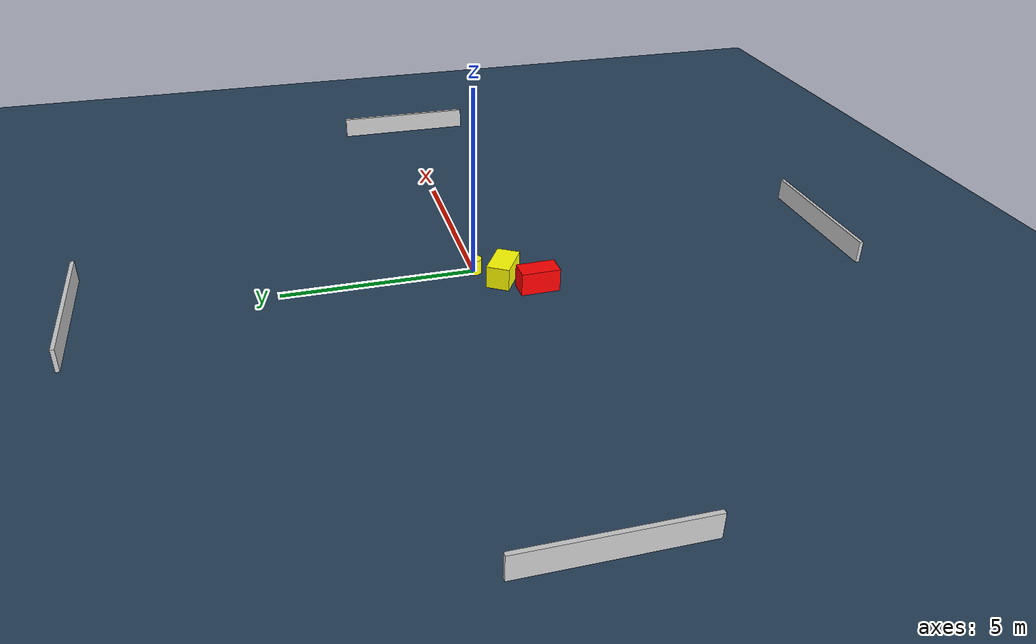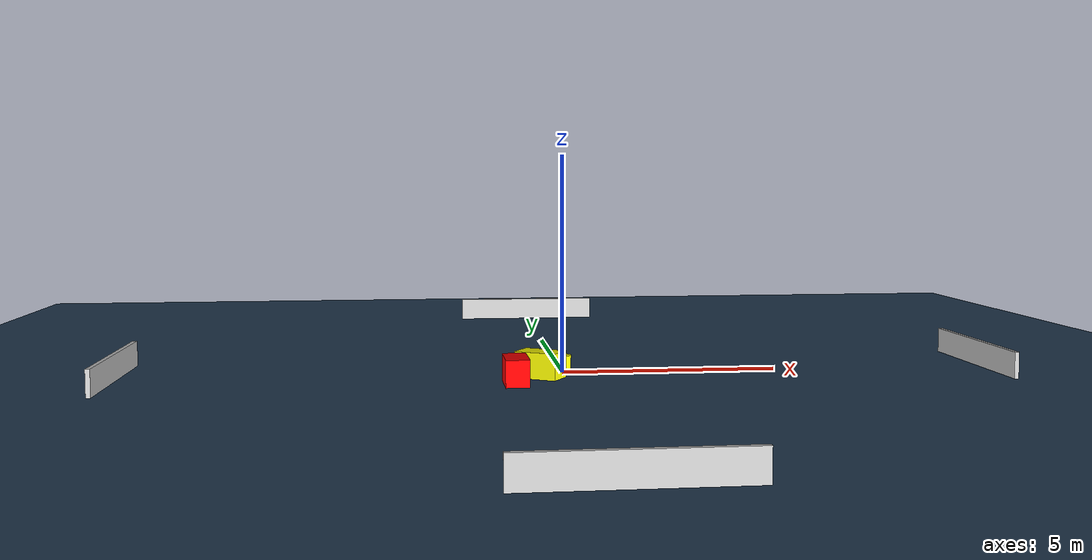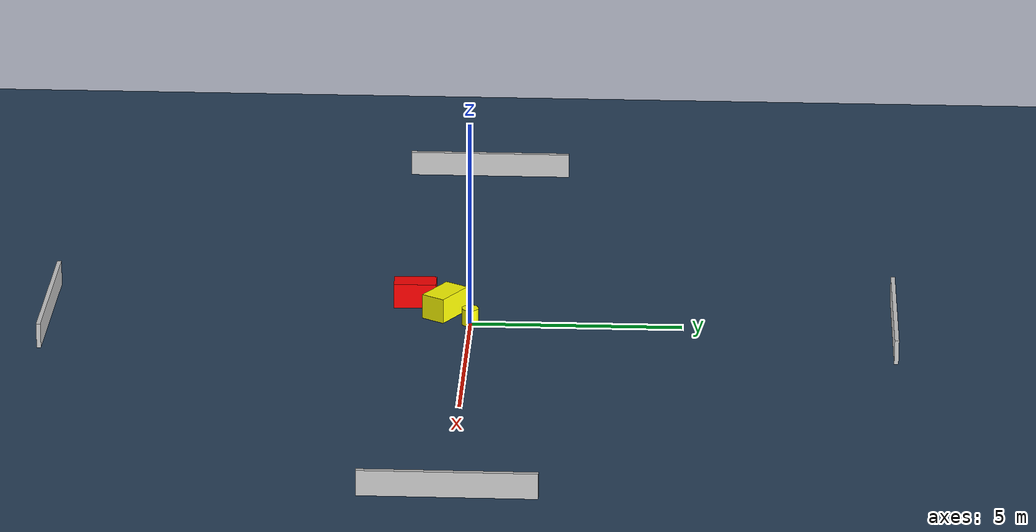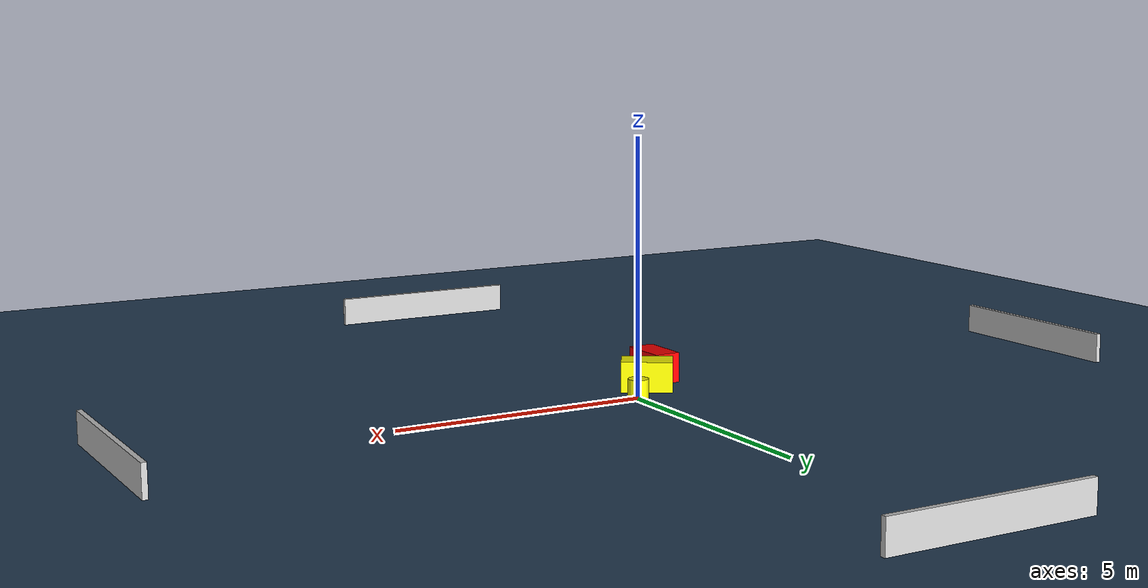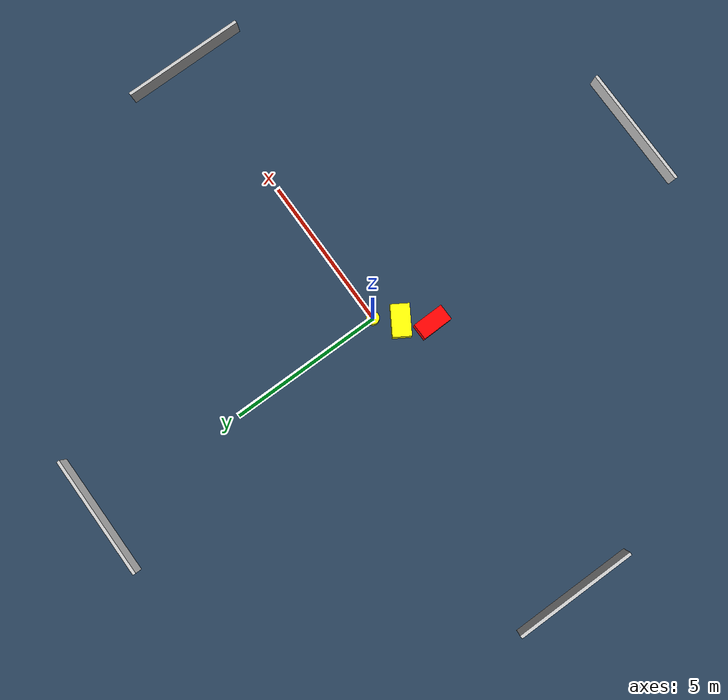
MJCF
<?xml version="1.0" ?>
<mujoco model="generated_environment">
  <option timestep="0.01" integrator="RK4" cone="elliptic"/>
  <default>
    <geom density="1"/>
  </default>
  <asset>
    <texture builtin="gradient" height="3072" name="skybox" rgb1="0.3 0.5 0.7" rgb2="0 0 0" type="skybox" width="512"/>
    <texture builtin="checker" height="300" name="groundplane" rgb1="0.2 0.3 0.4" rgb2="0.1 0.2 0.3" type="2d" width="300"/>
    <material name="groundplane" reflectance="0.2" texrepeat="5 5" texture="groundplane"/>
  </asset>
  <worldbody>
    <light dir="0 0 -1" directional="true" pos="0 0 1.5"/>
    <geom condim="3" friction="0.5 0.005 0.001" material="groundplane" name="floor" pos="0 0 0" size="0 0 0.05" type="plane"/>
    <body name="walls">
      <geom name="wall_1" condim="4" pos="-10.0 0.0 0.3" rgba="0.800000011920929 0.800000011920929 0.800000011920929 1.0" size="0.05 2.0 0.3" type="box"/>
      <geom name="wall_2" condim="4" pos="10.0 0.0 0.3" rgba="0.800000011920929 0.800000011920929 0.800000011920929 1.0" size="0.05 2.0 0.3" type="box"/>
      <geom name="wall_3" condim="4" pos="0.0 -10.0 0.3" rgba="0.800000011920929 0.800000011920929 0.800000011920929 1.0" size="2.0 0.05 0.3" type="box"/>
      <geom name="wall_4" condim="4" pos="0.0 10.0 0.3" rgba="0.800000011920929 0.800000011920929 0.800000011920929 1.0" size="2.0 0.05 0.3" type="box"/>
    </body>
    <body name="robot">
      <joint name="joint_x" type="slide" pos="0 0 0" axis="1 0 0"/>
      <joint name="joint_y" type="slide" pos="0 0 0" axis="0 1 0"/>
      <geom name="robot" type="cylinder" pos="0.0 0.0 0.2" size="0.2 0.2 0.0" mass="5.0" friction="1.0 0.005 0.0001" condim="4" rgba="1.0 1.0 0.0 1.0"/>
    </body>
    <body name="obstacle_1_movable">
      <geom name="obstacle_1_movable" condim="4" pos="-0.5684912411552594 -0.6295364375897555 0.3" euler="0 0 238.1415774958619" friction="0.0 0.005 0.001" rgba="1.0 1.0 0.0 1.0" size="0.29773898984530933 0.5010508117398719 0.3" type="box" mass="0.1"/>
      <joint type="free"/>
    </body>
    <body name="obstacle_2_static">
      <geom name="obstacle_2_static" condim="4" pos="-1.1749235974236494 -1.3684665216233365 0.3" euler="0 0 181.01749979310353" friction="0.0 0.005 0.001" rgba="1.0 0.0 0.0 1.0" size="0.26570912292945525 0.5044086816277555 0.3" type="box"/>
    </body>
  </worldbody>
  <actuator>
    <motor name="actuator_x" joint="joint_x" gear="1" ctrlrange="-1 1"/>
    <motor name="actuator_y" joint="joint_y" gear="1" ctrlrange="-1 1"/>
  </actuator>
</mujoco>
